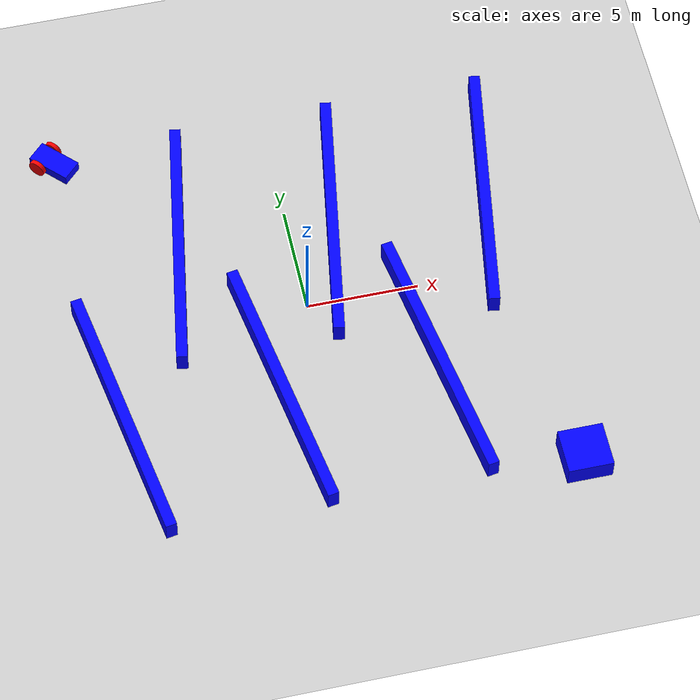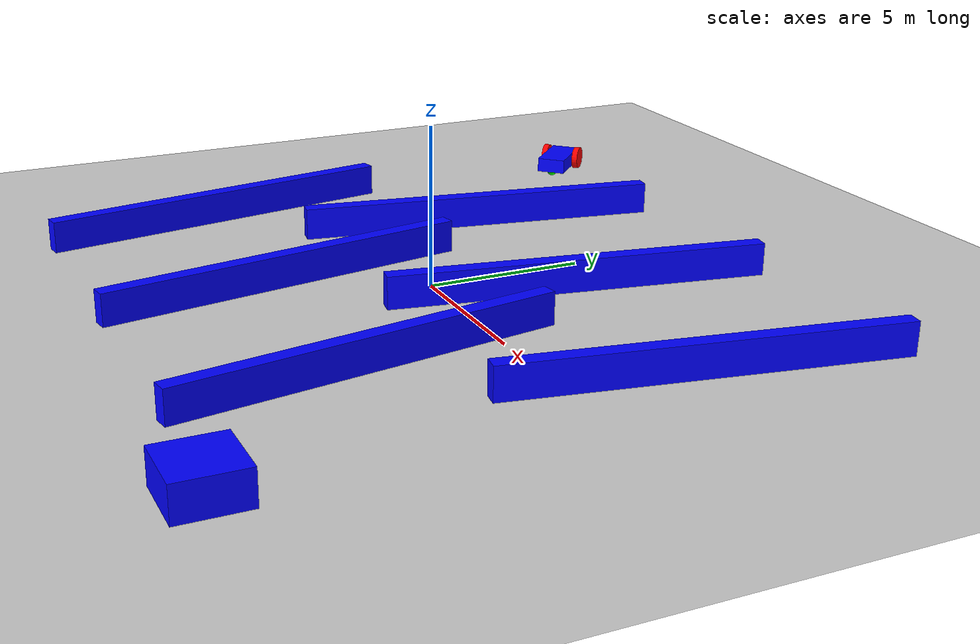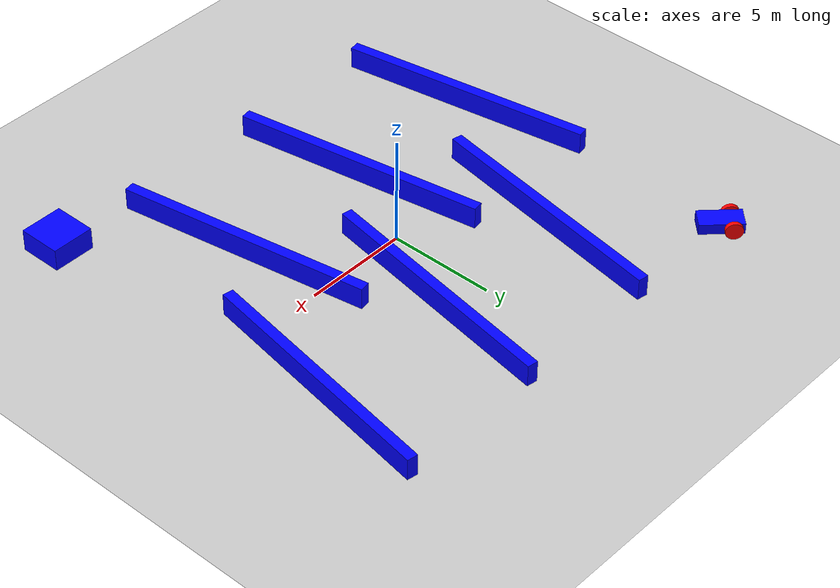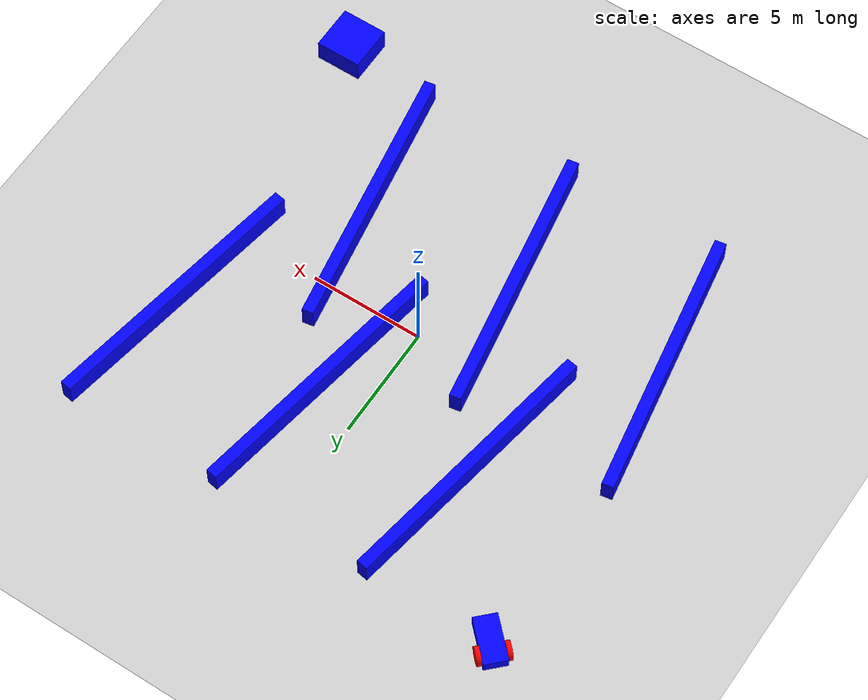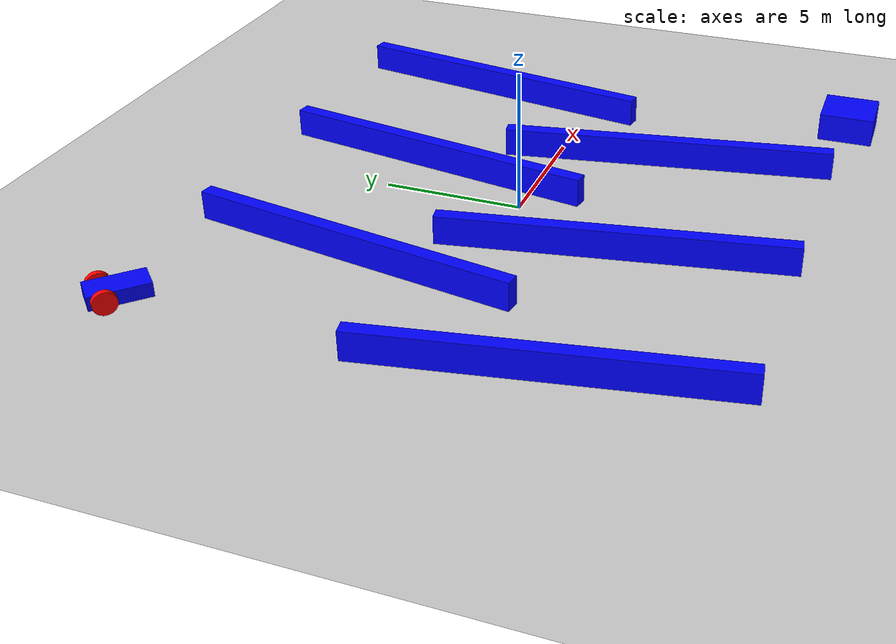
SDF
<sdf version="1.8">
 <world name="Moving_robot">
  <physics name="1ms" type="ignored">
   <max_step_size>0.001</max_step_size>
   <real_time_factor>1.0</real_time_factor>
  </physics>
  <plugin filename="libignition-gazebo-physics-system.so" name="ignition::gazebo::systems::Physics"/>
  <plugin filename="libignition-gazebo-user-commands-system.so" name="ignition::gazebo::systems::UserCommands"/>
  <plugin filename="libignition-gazebo-scene-broadcaster-system.so" name="ignition::gazebo::systems::SceneBroadcaster"/>
  <light type="directional" name="sun">
   <pose>0 0 10 0 0 0</pose>
   <diffuse>0.8 0.8 0.8 1</diffuse>
   <specular>0.2 0.2 0.2 1</specular>
   <attenuation>
    <range>1000</range>
    <constant>0.9</constant>
    <linear>0.01</linear>
    <quadratic>0.001</quadratic>
   </attenuation>
   <direction>-0.5 0.1 -0.9</direction>
  </light>
  <model name="ground_plane">
   <static>1</static>
   <static>true</static>
   <link name="link">
    <collision name="collision">
     <geometry><plane><normal>0 0 1</normal><size>100 100</size></plane></geometry>
     <surface><friction><ode><mu>100</mu><mu2>50</mu2></ode></friction></surface>
    </collision>
    <visual name="visual">
     <cast_shadows>0</cast_shadows>
     <geometry><plane><normal>0 0 1</normal><size>100 100</size></plane></geometry>
     <material>
      <ambient>0.8 0.8 0.8 1</ambient>
      <diffuse>0.8 0.8 0.8 1</diffuse>
      <specular>0.8 0.8 0.8 1</specular>
     </material>
    </visual>
    <velocity_decay><linear>0</linear><angular>0</angular></velocity_decay>
   </link>
  </model>
  <scene><ambient>0.4 0.4 0.4 1</ambient><background>0.7 0.7 0.7 1</background><shadows>0</shadows></scene>
  <physics type="ode">
   <max_step_size>0.01</max_step_size>
   <real_time_factor>1</real_time_factor>
   <real_time_update_rate>0</real_time_update_rate>
   <gravity>0 0 -9.8</gravity>
  </physics>
  <model name="vehicle_blue" canonical_link="chassis">
   <pose relative_to="world">-10 10 0 0 0 -0.785</pose>
   <link name="chassis">
    <pose relative_to="__model__">0.5 0 0.4 0 0 0</pose>
    <inertial>
     <mass>1.14395</mass>
     <inertia>
      <ixx>0.126164</ixx>
      <ixy>0</ixy>
      <ixz>0</ixz>
      <iyy>0.416519</iyy>
      <iyz>0</iyz>
      <izz>0.481014</izz>
     </inertia>
    </inertial>
    <visual name="visual">
     <geometry><box><size>2.0 1.0 0.5</size></box></geometry>
     <material>
      <ambient>0.0 0.0 1.0 1</ambient>
      <diffuse>0.0 0.0 1.0 1</diffuse>
      <specular>0.0 0.0 1.0 1</specular>
     </material>
    </visual>
    <collision name="collision"><geometry><box><size>2.0 1.0 0.5</size></box></geometry></collision>
   </link>
   <link name="left_wheel">
    <pose relative_to="chassis">-0.5 0.6 0 -1.5707 0 0</pose>
    <inertial>
     <mass>2</mass>
     <inertia><ixx>0.145833</ixx><ixy>0</ixy><ixz>0</ixz><iyy>0.145833</iyy><iyz>0</iyz><izz>0.125</izz></inertia>
    </inertial>
    <visual name="visual">
     <geometry><cylinder><radius>0.4</radius><length>0.2</length></cylinder></geometry>
     <material>
      <ambient>1.0 0.0 0.0 1</ambient>
      <diffuse>1.0 0.0 0.0 1</diffuse>
      <specular>1.0 0.0 0.0 1</specular>
     </material>
    </visual>
    <collision name="collision">
     <geometry><cylinder><radius>0.4</radius><length>0.2</length></cylinder></geometry>
    </collision>
   </link>
   <link name="right_wheel">
    <pose relative_to="chassis">-0.5 -0.6 0 -1.5707 0 0</pose>
    <inertial>
     <mass>1</mass>
     <inertia><ixx>0.145833</ixx><ixy>0</ixy><ixz>0</ixz><iyy>0.145833</iyy><iyz>0</iyz><izz>0.125</izz></inertia>
    </inertial>
    <visual name="visual">
     <geometry><cylinder><radius>0.4</radius><length>0.2</length></cylinder></geometry>
     <material>
      <ambient>1.0 0.0 0.0 1</ambient>
      <diffuse>1.0 0.0 0.0 1</diffuse>
      <specular>1.0 0.0 0.0 1</specular>
     </material>
    </visual>
    <collision name="collision">
     <geometry><cylinder><radius>0.4</radius><length>0.2</length></cylinder></geometry>
    </collision>
   </link>
   <frame name="caster_frame" attached_to="chassis"><pose>0.8 0 -0.2 0 0 0</pose></frame>
   <link name="caster">
    <pose relative_to="caster_frame"/>
    <inertial>
     <mass>1</mass>
     <inertia><ixx>0.1</ixx><ixy>0</ixy><ixz>0</ixz><iyy>0.1</iyy><iyz>0</iyz><izz>0.1</izz></inertia>
    </inertial>
    <visual name="visual">
     <geometry><sphere><radius>0.2</radius></sphere></geometry>
     <material>
      <ambient>0.0 1 0.0 1</ambient>
      <diffuse>0.0 1 0.0 1</diffuse>
      <specular>0.0 1 0.0 1</specular>
     </material>
    </visual>
    <collision name="collision"><geometry><sphere><radius>0.2</radius></sphere></geometry></collision>
   </link>
   <joint name="left_wheel_joint" type="revolute">
    <pose relative_to="left_wheel"/>
    <parent>chassis</parent>
    <child>left_wheel</child>
    <axis>
     <xyz expressed_in="__model__">0 1 0</xyz>
     <limit><lower>-1.79769e+308</lower><upper>1.79769e+308</upper></limit>
    </axis>
   </joint>
   <joint name="right_wheel_joint" type="revolute">
    <pose relative_to="right_wheel"/>
    <parent>chassis</parent>
    <child>right_wheel</child>
    <axis>
     <xyz expressed_in="__model__">0 1 0</xyz>
     <limit><lower>-1.79769e+308</lower><upper>1.79769e+308</upper></limit>
    </axis>
   </joint>
   <joint name="caster_wheel" type="ball"><parent>chassis</parent><child>caster</child></joint>
   <plugin filename="libignition-gazebo-diff-drive-system.so" name="ignition::gazebo::systems::DiffDrive">
    <left_joint>left_wheel_joint</left_joint>
    <right_joint>right_wheel_joint</right_joint>
    <wheel_separation>1.2</wheel_separation>
    <wheel_radius>0.4</wheel_radius>
    <odom_publish_frequency>1</odom_publish_frequency>
    <topic>cmd_vel</topic>
   </plugin>
  </model>
  <model name="wall_1">
   <plugin filename="libignition-gazebo-touchplugin-system.so" name="ignition::gazebo::systems::TouchPlugin">
    <target>vehicle_blue</target>
    <namespace>wall</namespace>
    <time>0.001</time>
    <enabled>true</enabled>
   </plugin>
   <static>true</static>
   <pose>9 4 0 0 0 -0.166</pose>
   <link name="box">
    <visual name="visual">
     <geometry><box><size>0.5 12.0 2.0</size></box></geometry>
     <material>
      <ambient>0.0 0.0 1.0 1</ambient>
      <diffuse>0.0 0.0 1.0 1</diffuse>
      <specular>0.0 0.0 1.0 1</specular>
     </material>
    </visual>
    <collision name="collision"><geometry><box><size>0.5 12.0 2.0</size></box></geometry></collision>
    <sensor name="sensor_contact" type="contact"><contact><collision>collision</collision></contact></sensor>
   </link>
  </model>
  <model name="wall_2">
   <plugin filename="libignition-gazebo-touchplugin-system.so" name="ignition::gazebo::systems::TouchPlugin">
    <target>vehicle_blue</target>
    <namespace>wall</namespace>
    <time>0.001</time>
    <enabled>true</enabled>
   </plugin>
   <static>true</static>
   <pose>2 4 0 0 0 -0.166</pose>
   <link name="box">
    <visual name="visual">
     <geometry><box><size>0.5 12.0 2.0</size></box></geometry>
     <material>
      <ambient>0.0 0.0 1.0 1</ambient>
      <diffuse>0.0 0.0 1.0 1</diffuse>
      <specular>0.0 0.0 1.0 1</specular>
     </material>
    </visual>
    <collision name="collision"><geometry><box><size>0.5 12.0 2.0</size></box></geometry></collision>
    <sensor name="sensor_contact" type="contact"><contact><collision>collision</collision></contact></sensor>
   </link>
  </model>
  <model name="wall_3">
   <plugin filename="libignition-gazebo-touchplugin-system.so" name="ignition::gazebo::systems::TouchPlugin">
    <target>vehicle_blue</target>
    <namespace>wall</namespace>
    <time>0.001</time>
    <enabled>true</enabled>
   </plugin>
   <static>true</static>
   <pose>-5 4 0 0 0 -0.166</pose>
   <link name="box">
    <visual name="visual">
     <geometry><box><size>0.5 12.0 2.0</size></box></geometry>
     <material>
      <ambient>0.0 0.0 1.0 1</ambient>
      <diffuse>0.0 0.0 1.0 1</diffuse>
      <specular>0.0 0.0 1.0 1</specular>
     </material>
    </visual>
    <collision name="collision"><geometry><box><size>0.5 12.0 2.0</size></box></geometry></collision>
    <sensor name="sensor_contact" type="contact"><contact><collision>collision</collision></contact></sensor>
   </link>
  </model>
  <model name="wall_4">
   <plugin filename="libignition-gazebo-touchplugin-system.so" name="ignition::gazebo::systems::TouchPlugin">
    <target>vehicle_blue</target>
    <namespace>wall</namespace>
    <time>0.001</time>
    <enabled>true</enabled>
   </plugin>
   <static>true</static>
   <pose>5 -4 0 0 0 0.166</pose>
   <link name="box">
    <visual name="visual">
     <geometry><box><size>0.5 12.0 2.0</size></box></geometry>
     <material>
      <ambient>0.0 0.0 1.0 1</ambient>
      <diffuse>0.0 0.0 1.0 1</diffuse>
      <specular>0.0 0.0 1.0 1</specular>
     </material>
    </visual>
    <collision name="collision"><geometry><box><size>0.5 12.0 2.0</size></box></geometry></collision>
    <sensor name="sensor_contact" type="contact"><contact><collision>collision</collision></contact></sensor>
   </link>
  </model>
  <model name="wall_5">
   <plugin filename="libignition-gazebo-touchplugin-system.so" name="ignition::gazebo::systems::TouchPlugin">
    <target>vehicle_blue</target>
    <namespace>wall</namespace>
    <time>0.001</time>
    <enabled>true</enabled>
   </plugin>
   <static>true</static>
   <pose>-2 -4 0 0 0 0.166</pose>
   <link name="box">
    <visual name="visual">
     <geometry><box><size>0.5 12.0 2.0</size></box></geometry>
     <material>
      <ambient>0.0 0.0 1.0 1</ambient>
      <diffuse>0.0 0.0 1.0 1</diffuse>
      <specular>0.0 0.0 1.0 1</specular>
     </material>
    </visual>
    <collision name="collision"><geometry><box><size>0.5 12.0 2.0</size></box></geometry></collision>
    <sensor name="sensor_contact" type="contact"><contact><collision>collision</collision></contact></sensor>
   </link>
  </model>
  <model name="wall_6">
   <plugin filename="libignition-gazebo-touchplugin-system.so" name="ignition::gazebo::systems::TouchPlugin">
    <target>vehicle_blue</target>
    <namespace>wall</namespace>
    <time>0.001</time>
    <enabled>true</enabled>
   </plugin>
   <static>true</static>
   <pose>-9 -4 0 0 0 0.166</pose>
   <link name="box">
    <visual name="visual">
     <geometry><box><size>0.5 12.0 2.0</size></box></geometry>
     <material>
      <ambient>0.0 0.0 1.0 1</ambient>
      <diffuse>0.0 0.0 1.0 1</diffuse>
      <specular>0.0 0.0 1.0 1</specular>
     </material>
    </visual>
    <collision name="collision"><geometry><box><size>0.5 12.0 2.0</size></box></geometry></collision>
    <sensor name="sensor_contact" type="contact"><contact><collision>collision</collision></contact></sensor>
   </link>
  </model>
  <model name="goal_point">
   <plugin filename="libignition-gazebo-touchplugin-system.so" name="ignition::gazebo::systems::TouchPlugin">
    <target>vehicle_blue</target>
    <namespace>goal</namespace>
    <time>0.001</time>
    <enabled>true</enabled>
   </plugin>
   <static>true</static>
   <pose>10 -10 0 0 0 0</pose>
   <link name="box">
    <visual name="visual">
     <geometry><box><size>2.0 2.0 2.0</size></box></geometry>
     <material>
      <ambient>0.0 0.0 1.0 1</ambient>
      <diffuse>0.0 0.0 1.0 1</diffuse>
      <specular>0.0 0.0 1.0 1</specular>
     </material>
    </visual>
    <collision name="collision"><geometry><box><size>2.0 2.0 2.0</size></box></geometry></collision>
    <sensor name="sensor_contact" type="contact"><contact><collision>collision</collision></contact></sensor>
   </link>
  </model>
 </world>
</sdf>
